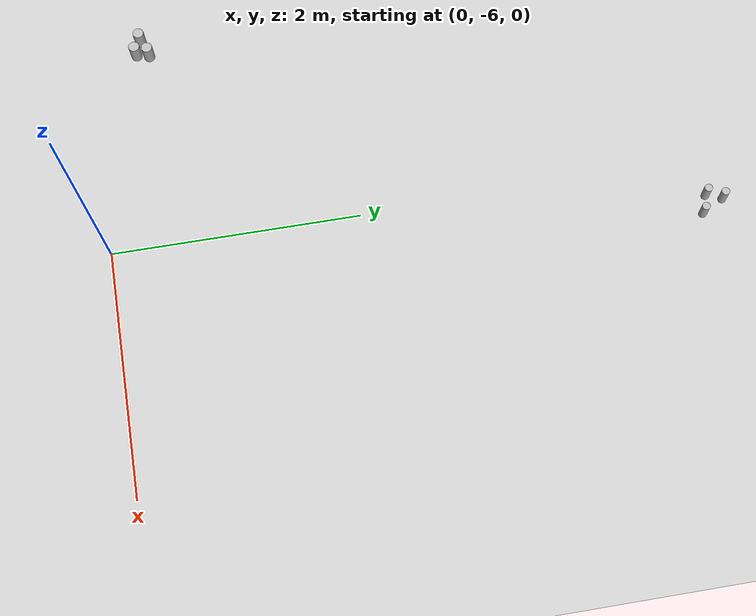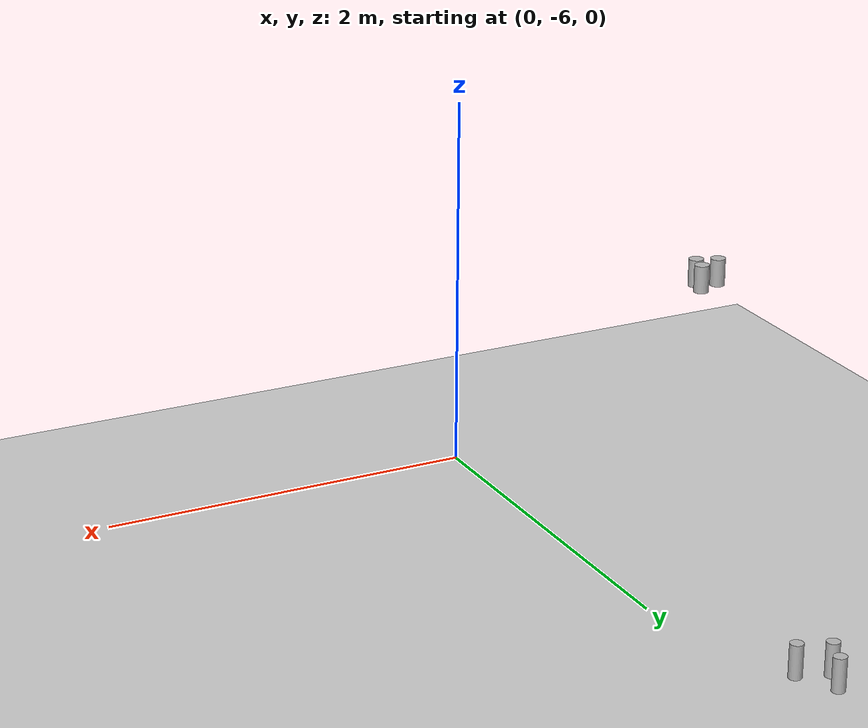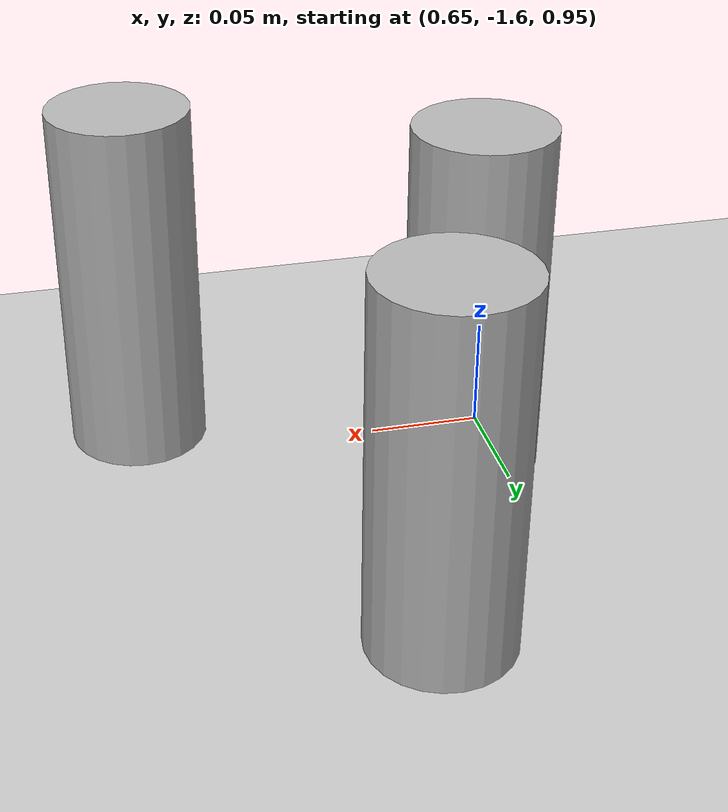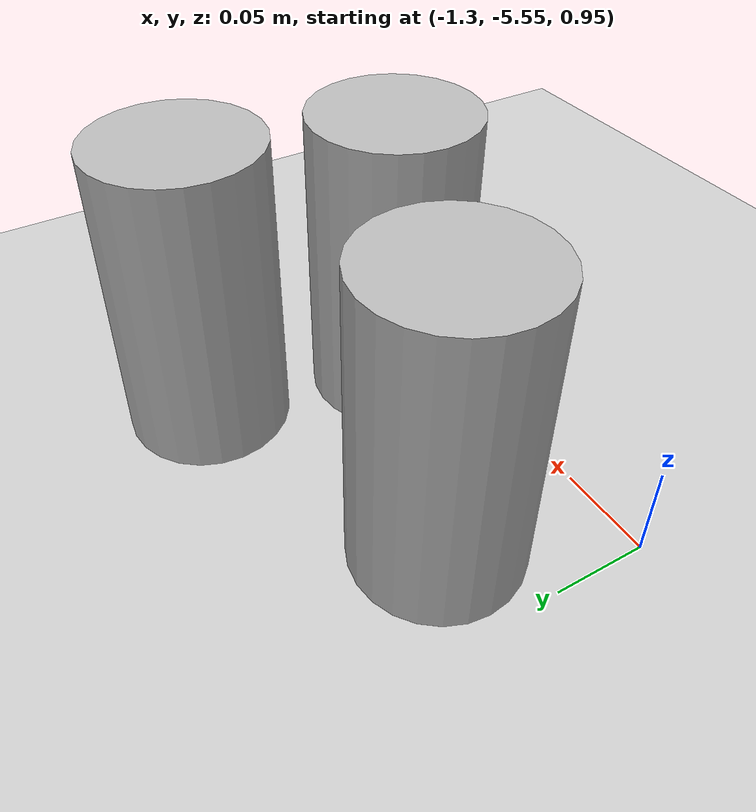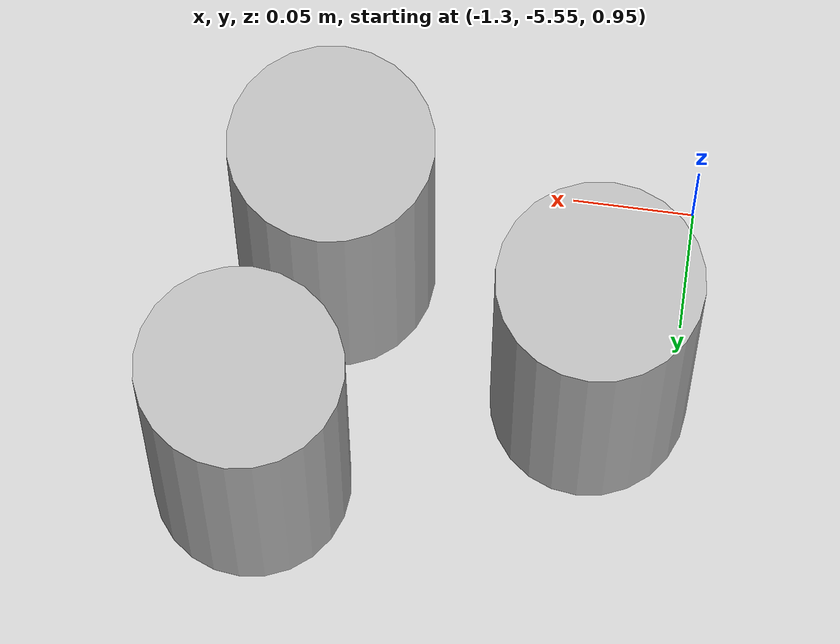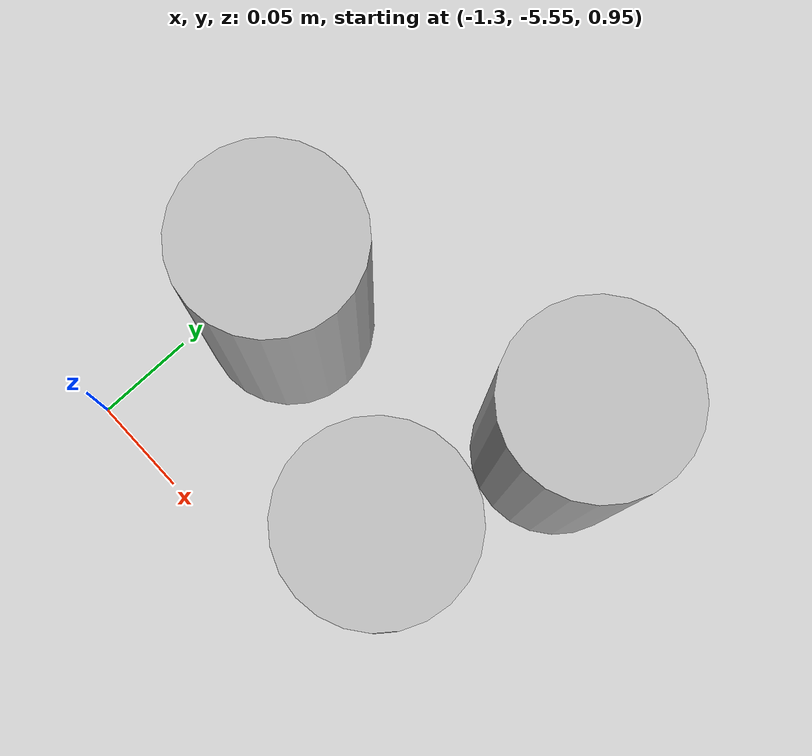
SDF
<sdf version="1.7">
 <world name="default">
  <light name="sun" type="directional">
   <pose>0 0 10 0 -0 0</pose>
   <diffuse>0.8 0.8 0.8 1</diffuse>
   <specular>0.2 0.2 0.2 1</specular>
   <attenuation>
    <range>1000</range>
    <constant>0.9</constant>
    <linear>0.01</linear>
    <quadratic>0.001</quadratic>
   </attenuation>
   <direction>0 0.5 -0.9</direction>
   <spot><inner_angle>0</inner_angle><outer_angle>0</outer_angle><falloff>0</falloff></spot>
  </light>
  <light name="point_light" type="point">
   <pose>0 -0.377195 6.59868 0 -0 0</pose>
   <diffuse>0.784314 0.784314 0.784314 1</diffuse>
   <specular>0.0980392 0.0980392 0.0980392 1</specular>
   <attenuation>
    <range>50</range>
    <constant>0.8</constant>
    <linear>0</linear>
    <quadratic>0.001</quadratic>
   </attenuation>
   <cast_shadows>0</cast_shadows>
   <direction>0 0 -1</direction>
   <spot><inner_angle>0</inner_angle><outer_angle>0</outer_angle><falloff>0</falloff></spot>
  </light>
  <model name="ground_plane">
   <static>1</static>
   <link name="link">
    <collision name="collision">
     <geometry><plane><normal>0 0 1</normal><size>100 100</size></plane></geometry>
     <surface>
      <contact><collide_bitmask>65535</collide_bitmask></contact>
      <friction><ode><mu>100</mu><mu2>50</mu2></ode></friction>
     </surface>
    </collision>
    <visual name="visual">
     <cast_shadows>0</cast_shadows>
     <geometry><plane><normal>0 0 1</normal><size>100 100</size></plane></geometry>
     <material>
      <script><uri>file://media/materials/scripts/gazebo.material</uri><name>Gazebo/Grey</name></script>
     </material>
    </visual>
   </link>
  </model>
  <gravity>0 0 -9.8</gravity>
  <magnetic_field>6e-06 2.3e-05 -4.2e-05</magnetic_field>
  <atmosphere type="adiabatic"/>
  <physics type="ode">
   <max_step_size>0.001</max_step_size>
   <real_time_factor>1</real_time_factor>
   <real_time_update_rate>1000</real_time_update_rate>
  </physics>
  <scene><ambient>0.4 0.4 0.4 1</ambient><background>0.7 0.7 0.7 1</background><shadows>1</shadows></scene>
  <audio><device>default</device></audio>
  <spherical_coordinates>
   <surface_model>EARTH_WGS84</surface_model>
   <latitude_deg>0</latitude_deg>
   <longitude_deg>0</longitude_deg>
   <elevation>0</elevation>
   <heading_deg>0</heading_deg>
  </spherical_coordinates>
  <model name="biscuits_pack">
   <static>0</static>
   <link name="link">
    <inertial>
     <mass>0.25</mass>
     <inertia><ixx>0</ixx><ixy>0</ixy><ixz>0</ixz><iyy>0</iyy><iyz>0</iyz><izz>0</izz></inertia>
    </inertial>
    <collision name="collision">
     <geometry><cylinder><radius>0.029</radius><length>0.15</length></cylinder></geometry>
    </collision>
    <visual name="visual">
     <geometry><cylinder><radius>0.029</radius><length>0.15</length></cylinder></geometry>
     <material>
      <script>
       <uri>model://biscuits_pack/material/scripts</uri>
       <uri>model://biscuits_pack/material/textures</uri>
       <name>Custom/biscuits_pack</name>
      </script>
     </material>
    </visual>
    <velocity_decay><linear>0</linear><angular>0</angular></velocity_decay>
   </link>
   <pose>0.80919 -1.58807 1.05001 -0.000157 3.3e-05 0.000528</pose>
  </model>
  <model name="biscuits_pack_0">
   <static>0</static>
   <link name="link">
    <inertial>
     <mass>0.25</mass>
     <inertia><ixx>0</ixx><ixy>0</ixy><ixz>0</ixz><iyy>0</iyy><iyz>0</iyz><izz>0</izz></inertia>
    </inertial>
    <collision name="collision">
     <geometry><cylinder><radius>0.029</radius><length>0.15</length></cylinder></geometry>
    </collision>
    <visual name="visual">
     <geometry><cylinder><radius>0.029</radius><length>0.15</length></cylinder></geometry>
     <material>
      <script>
       <uri>model://biscuits_pack/material/scripts</uri>
       <uri>model://biscuits_pack/material/textures</uri>
       <name>Custom/biscuits_pack</name>
      </script>
     </material>
    </visual>
    <velocity_decay><linear>0</linear><angular>0</angular></velocity_decay>
   </link>
   <pose>0.719936 -1.42331 1.05001 -0.000341 -4.1e-05 -5.4e-05</pose>
  </model>
  <model name="biscuits_pack_1">
   <static>0</static>
   <link name="link">
    <inertial>
     <mass>0.25</mass>
     <inertia><ixx>0</ixx><ixy>0</ixy><ixz>0</ixz><iyy>0</iyy><iyz>0</iyz><izz>0</izz></inertia>
    </inertial>
    <collision name="collision">
     <geometry><cylinder><radius>0.029</radius><length>0.15</length></cylinder></geometry>
    </collision>
    <visual name="visual">
     <geometry><cylinder><radius>0.029</radius><length>0.15</length></cylinder></geometry>
     <material>
      <script>
       <uri>model://biscuits_pack/material/scripts</uri>
       <uri>model://biscuits_pack/material/textures</uri>
       <name>Custom/biscuits_pack</name>
      </script>
     </material>
    </visual>
    <velocity_decay><linear>0</linear><angular>0</angular></velocity_decay>
   </link>
   <pose>0.673553 -1.53788 1.05 -0.000189 -7.2e-05 -4.2e-05</pose>
  </model>
  <model name="cocacola">
   <static>0</static>
   <link name="link">
    <inertial>
     <mass>0.25</mass>
     <inertia><ixx>0</ixx><ixy>0</ixy><ixz>0</ixz><iyy>0</iyy><iyz>0</iyz><izz>0</izz></inertia>
    </inertial>
    <collision name="collision">
     <pose>0 0 0.075 -3.14159 -0 0</pose>
     <geometry><cylinder><radius>0.04</radius><length>0.15</length></cylinder></geometry>
    </collision>
    <visual name="visual">
     <pose>0 0 0.075 -3.14159 -0 0</pose>
     <geometry><cylinder><radius>0.04</radius><length>0.15</length></cylinder></geometry>
     <material>
      <script>
       <uri>model://cocacola/material/scripts</uri>
       <uri>model://cocacola/material/textures</uri>
       <name>Custom/cocacola</name>
      </script>
     </material>
    </visual>
    <velocity_decay><linear>0</linear><angular>0</angular></velocity_decay>
   </link>
   <pose>-1.13542 -5.40473 0.974998 6.2e-05 0.000176 -1.6e-05</pose>
  </model>
  <model name="cocacola_0">
   <static>0</static>
   <link name="link">
    <inertial>
     <mass>0.25</mass>
     <inertia><ixx>0</ixx><ixy>0</ixy><ixz>0</ixz><iyy>0</iyy><iyz>0</iyz><izz>0</izz></inertia>
    </inertial>
    <collision name="collision">
     <pose>0 0 0.075 -3.14159 -0 0</pose>
     <geometry><cylinder><radius>0.04</radius><length>0.15</length></cylinder></geometry>
    </collision>
    <visual name="visual">
     <pose>0 0 0.075 -3.14159 -0 0</pose>
     <geometry><cylinder><radius>0.04</radius><length>0.15</length></cylinder></geometry>
     <material>
      <script>
       <uri>model://cocacola/material/scripts</uri>
       <uri>model://cocacola/material/textures</uri>
       <name>Custom/cocacola</name>
      </script>
     </material>
    </visual>
    <velocity_decay><linear>0</linear><angular>0</angular></velocity_decay>
   </link>
   <pose>-1.26594 -5.45549 0.975006 -0.000109 9e-05 -2e-05</pose>
  </model>
  <model name="cocacola_1">
   <static>0</static>
   <link name="link">
    <inertial>
     <mass>0.25</mass>
     <inertia><ixx>0</ixx><ixy>0</ixy><ixz>0</ixz><iyy>0</iyy><iyz>0</iyz><izz>0</izz></inertia>
    </inertial>
    <collision name="collision">
     <pose>0 0 0.075 -3.14159 -0 0</pose>
     <geometry><cylinder><radius>0.04</radius><length>0.15</length></cylinder></geometry>
    </collision>
    <visual name="visual">
     <pose>0 0 0.075 -3.14159 -0 0</pose>
     <geometry><cylinder><radius>0.04</radius><length>0.15</length></cylinder></geometry>
     <material>
      <script>
       <uri>model://cocacola/material/scripts</uri>
       <uri>model://cocacola/material/textures</uri>
       <name>Custom/cocacola</name>
      </script>
     </material>
    </visual>
    <velocity_decay><linear>0</linear><angular>0</angular></velocity_decay>
   </link>
   <pose>-1.15778 -5.49764 0.975004 -5e-05 9.2e-05 -1.8e-05</pose>
  </model>
 </world>
</sdf>
